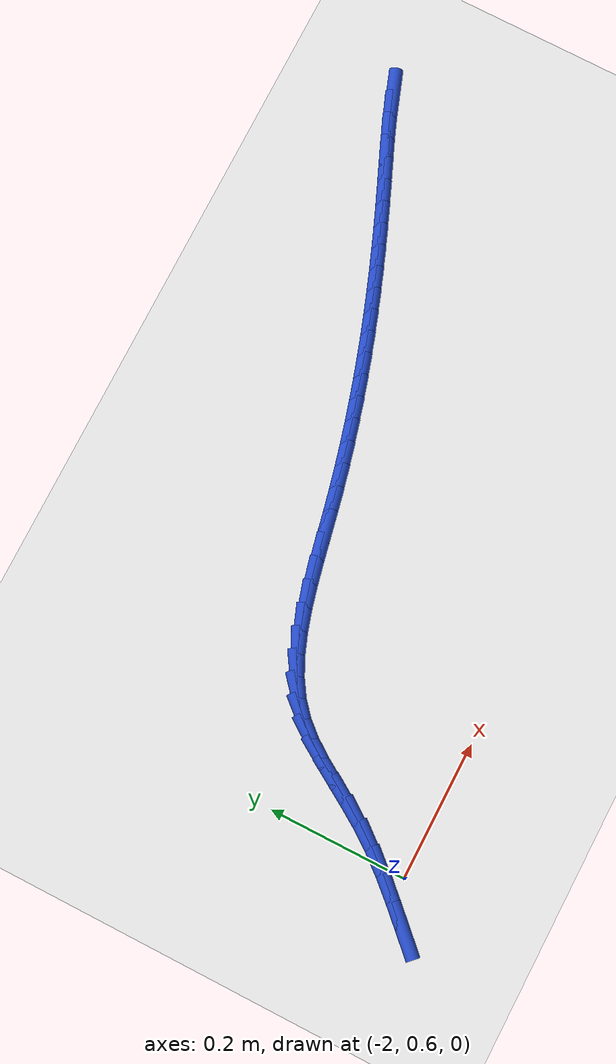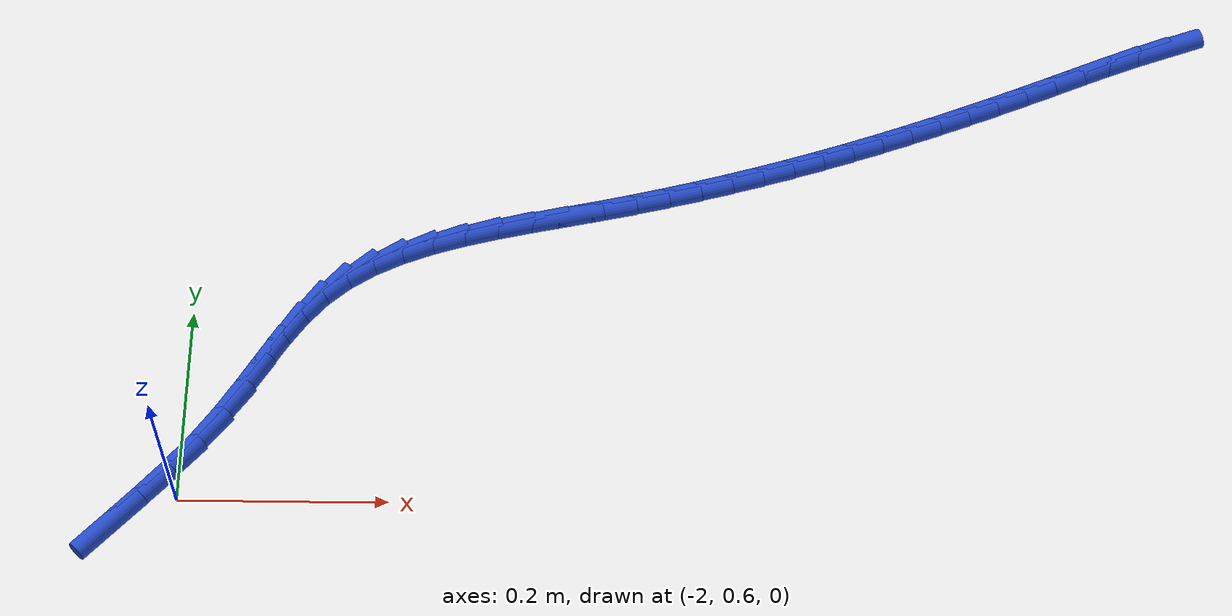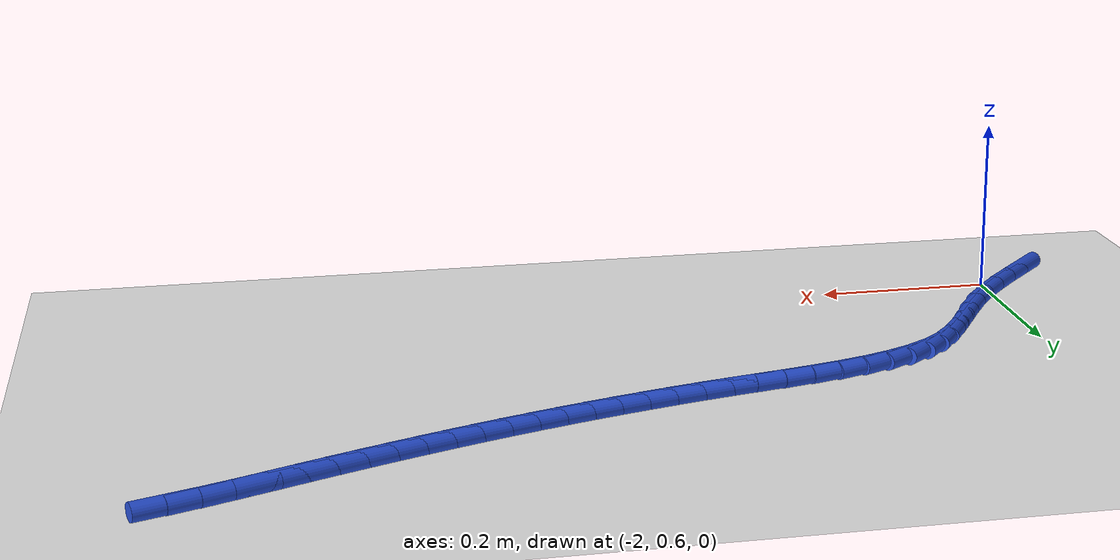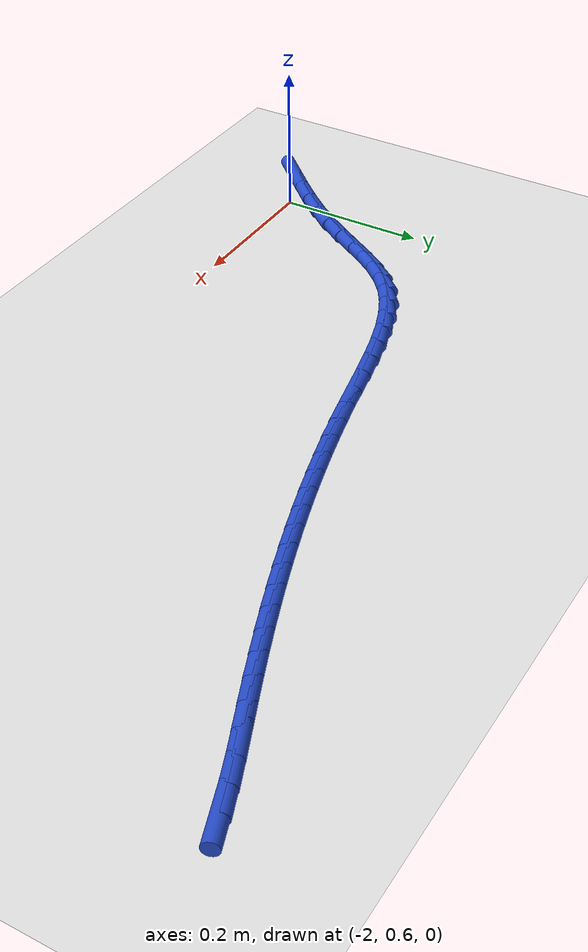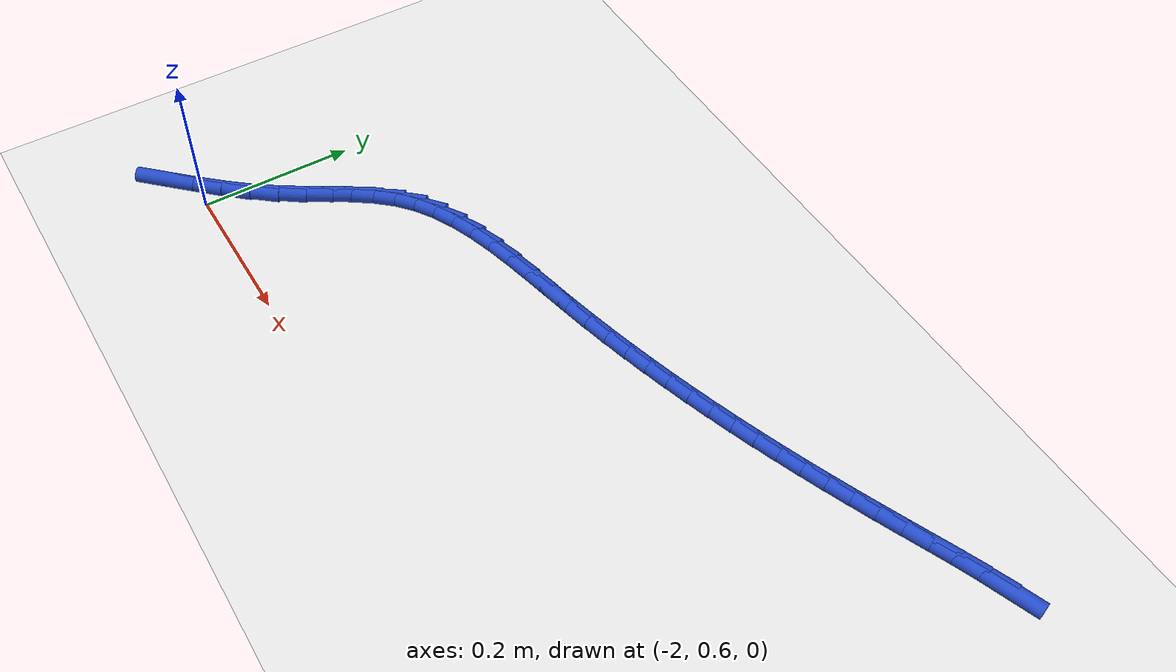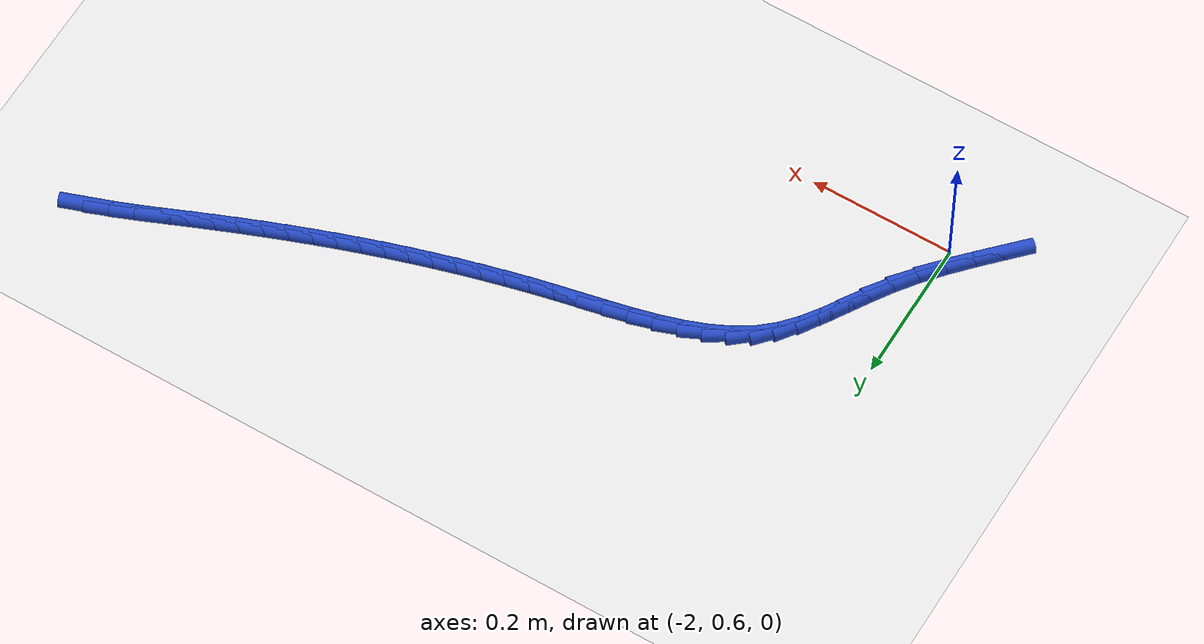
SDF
<sdf version="1.6">
 <world name="default">
  <model name="ground_plane">
   <static>1</static>
   <link name="link">
    <collision name="collision">
     <geometry><plane><normal>0 0 1</normal><size>100 100</size></plane></geometry>
     <surface><friction><ode><mu>100</mu><mu2>50</mu2></ode></friction></surface>
    </collision>
    <visual name="visual">
     <cast_shadows>0</cast_shadows>
     <geometry><plane><normal>0 0 1</normal><size>100 100</size></plane></geometry>
     <material>
      <script><uri>file://media/materials/scripts/gazebo.material</uri><name>Gazebo/WhiteGlow</name></script>
     </material>
    </visual>
   </link>
  </model>
  <model name="line">
   <link name="link_55">
    <pose>-1.035211006623647 1.110637410964738 0.01 0 1.57 0.34674294993567206</pose>
    <collision name="collision">
     <geometry><cylinder><radius>0.01</radius><length>0.08</length></cylinder></geometry>
    </collision>
    <visual name="visual">
     <material>
      <script><name>Gazebo/Blue</name><uri>file://media/materials/scripts/gazebo.material</uri></script>
     </material>
     <geometry><cylinder><radius>0.01</radius><length>0.08</length></cylinder></geometry>
    </visual>
   </link>
   <link name="link_56">
    <pose>-1.065957953438669 1.0995272530395916 0.01 0 1.57 0.3785365288893354</pose>
    <collision name="collision">
     <geometry><cylinder><radius>0.01</radius><length>0.08</length></cylinder></geometry>
    </collision>
    <visual name="visual">
     <material>
      <script><name>Gazebo/Blue</name><uri>file://media/materials/scripts/gazebo.material</uri></script>
     </material>
     <geometry><cylinder><radius>0.01</radius><length>0.08</length></cylinder></geometry>
    </visual>
   </link>
   <link name="link_57">
    <pose>-1.0966166528225265 1.0873337740822344 0.01 0 1.57 0.397098282216129</pose>
    <collision name="collision">
     <geometry><cylinder><radius>0.01</radius><length>0.08</length></cylinder></geometry>
    </collision>
    <visual name="visual">
     <material>
      <script><name>Gazebo/Blue</name><uri>file://media/materials/scripts/gazebo.material</uri></script>
     </material>
     <geometry><cylinder><radius>0.01</radius><length>0.08</length></cylinder></geometry>
    </visual>
   </link>
   <link name="link_58">
    <pose>-1.1271143726811463 1.0745437321711864 0.01 0 1.57 0.4029237108310625</pose>
    <collision name="collision">
     <geometry><cylinder><radius>0.01</radius><length>0.08</length></cylinder></geometry>
    </collision>
    <visual name="visual">
     <material>
      <script><name>Gazebo/Blue</name><uri>file://media/materials/scripts/gazebo.material</uri></script>
     </material>
     <geometry><cylinder><radius>0.01</radius><length>0.08</length></cylinder></geometry>
    </visual>
   </link>
   <link name="link_59">
    <pose>-1.1573783809204568 1.061643885384967 0.01 0 1.57 0.39751565663080074</pose>
    <collision name="collision">
     <geometry><cylinder><radius>0.01</radius><length>0.08</length></cylinder></geometry>
    </collision>
    <visual name="visual">
     <material>
      <script><name>Gazebo/Blue</name><uri>file://media/materials/scripts/gazebo.material</uri></script>
     </material>
     <geometry><cylinder><radius>0.01</radius><length>0.08</length></cylinder></geometry>
    </visual>
   </link>
   <link name="link_60">
    <pose>-1.187353237792166 1.0490584065122837 0.01 0 1.57 0.38870804504021667</pose>
    <collision name="collision">
     <geometry><cylinder><radius>0.01</radius><length>0.08</length></cylinder></geometry>
    </collision>
    <visual name="visual">
     <material>
      <script><name>Gazebo/Blue</name><uri>file://media/materials/scripts/gazebo.material</uri></script>
     </material>
     <geometry><cylinder><radius>0.01</radius><length>0.08</length></cylinder></geometry>
    </visual>
   </link>
   <link name="link_61">
    <pose>-1.2170732323509796 1.0368867175410643 0.01 0 1.57 0.37910753694340543</pose>
    <collision name="collision">
     <geometry><cylinder><radius>0.01</radius><length>0.08</length></cylinder></geometry>
    </collision>
    <visual name="visual">
     <material>
      <script><name>Gazebo/Blue</name><uri>file://media/materials/scripts/gazebo.material</uri></script>
     </material>
     <geometry><cylinder><radius>0.01</radius><length>0.08</length></cylinder></geometry>
    </visual>
   </link>
   <link name="link_62">
    <pose>-1.2466016678025291 1.0251232310482887 0.01 0 1.57 0.36874794204758904</pose>
    <collision name="collision">
     <geometry><cylinder><radius>0.01</radius><length>0.08</length></cylinder></geometry>
    </collision>
    <visual name="visual">
     <material>
      <script><name>Gazebo/Blue</name><uri>file://media/materials/scripts/gazebo.material</uri></script>
     </material>
     <geometry><cylinder><radius>0.01</radius><length>0.08</length></cylinder></geometry>
    </visual>
   </link>
   <link name="link_63">
    <pose>-1.27600186196344 1.0137623067301282 0.01 0 1.57 0.35767268551169923</pose>
    <collision name="collision">
     <geometry><cylinder><radius>0.01</radius><length>0.08</length></cylinder></geometry>
    </collision>
    <visual name="visual">
     <material>
      <script><name>Gazebo/Blue</name><uri>file://media/materials/scripts/gazebo.material</uri></script>
     </material>
     <geometry><cylinder><radius>0.01</radius><length>0.08</length></cylinder></geometry>
    </visual>
   </link>
   <link name="link_64">
    <pose>-1.3053371326503358 1.0027983042827555 0.01 0 1.57 0.34593583188813853</pose>
    <collision name="collision">
     <geometry><cylinder><radius>0.01</radius><length>0.08</length></cylinder></geometry>
    </collision>
    <visual name="visual">
     <material>
      <script><name>Gazebo/Blue</name><uri>file://media/materials/scripts/gazebo.material</uri></script>
     </material>
     <geometry><cylinder><radius>0.01</radius><length>0.08</length></cylinder></geometry>
    </visual>
   </link>
   <link name="link_65">
    <pose>-1.3346707976798418 0.9922255834023425 0.01 0 1.57 0.3336014136862844</pose>
    <collision name="collision">
     <geometry><cylinder><radius>0.01</radius><length>0.08</length></cylinder></geometry>
    </collision>
    <visual name="visual">
     <material>
      <script><name>Gazebo/Blue</name><uri>file://media/materials/scripts/gazebo.material</uri></script>
     </material>
     <geometry><cylinder><radius>0.01</radius><length>0.08</length></cylinder></geometry>
    </visual>
   </link>
   <link name="link_66">
    <pose>-1.3640661748685832 0.9820385037850615 0.01 0 1.57 0.3207423926522801</pose>
    <collision name="collision">
     <geometry><cylinder><radius>0.01</radius><length>0.08</length></cylinder></geometry>
    </collision>
    <visual name="visual">
     <material>
      <script><name>Gazebo/Blue</name><uri>file://media/materials/scripts/gazebo.material</uri></script>
     </material>
     <geometry><cylinder><radius>0.01</radius><length>0.08</length></cylinder></geometry>
    </visual>
   </link>
   <link name="link_67">
    <pose>-1.393586582033184 0.9722314251270845 0.01 0 1.57 0.30743928002870974</pose>
    <collision name="collision">
     <geometry><cylinder><radius>0.01</radius><length>0.08</length></cylinder></geometry>
    </collision>
    <visual name="visual">
     <material>
      <script><name>Gazebo/Blue</name><uri>file://media/materials/scripts/gazebo.material</uri></script>
     </material>
     <geometry><cylinder><radius>0.01</radius><length>0.08</length></cylinder></geometry>
    </visual>
   </link>
   <link name="link_68">
    <pose>-1.4232953369902692 0.9627987071245837 0.01 0 1.57 0.29377846605774915</pose>
    <collision name="collision">
     <geometry><cylinder><radius>0.01</radius><length>0.08</length></cylinder></geometry>
    </collision>
    <visual name="visual">
     <material>
      <script><name>Gazebo/Blue</name><uri>file://media/materials/scripts/gazebo.material</uri></script>
     </material>
     <geometry><cylinder><radius>0.01</radius><length>0.08</length></cylinder></geometry>
    </visual>
   </link>
   <link name="link_69">
    <pose>-1.4532557575564637 0.9537347094737318 0.01 0 1.57 0.27985033041606083</pose>
    <collision name="collision">
     <geometry><cylinder><radius>0.01</radius><length>0.08</length></cylinder></geometry>
    </collision>
    <visual name="visual">
     <material>
      <script><name>Gazebo/Blue</name><uri>file://media/materials/scripts/gazebo.material</uri></script>
     </material>
     <geometry><cylinder><radius>0.01</radius><length>0.08</length></cylinder></geometry>
    </visual>
   </link>
   <link name="link_70">
    <pose>-1.483531161548392 0.9450337918707004 0.01 0 1.57 0.26574722159702757</pose>
    <collision name="collision">
     <geometry><cylinder><radius>0.01</radius><length>0.08</length></cylinder></geometry>
    </collision>
    <visual name="visual">
     <material>
      <script><name>Gazebo/Blue</name><uri>file://media/materials/scripts/gazebo.material</uri></script>
     </material>
     <geometry><cylinder><radius>0.01</radius><length>0.08</length></cylinder></geometry>
    </visual>
   </link>
   <link name="link_71">
    <pose>-1.514184866782678 0.9366903140116618 0.01 0 1.57 0.2515614024798977</pose>
    <collision name="collision">
     <geometry><cylinder><radius>0.01</radius><length>0.08</length></cylinder></geometry>
    </collision>
    <visual name="visual">
     <material>
      <script><name>Gazebo/Blue</name><uri>file://media/materials/scripts/gazebo.material</uri></script>
     </material>
     <geometry><cylinder><radius>0.01</radius><length>0.08</length></cylinder></geometry>
    </visual>
   </link>
   <link name="link_72">
    <pose>-1.5452801910759477 0.9286986355927882 0.01 0 1.57 0.23738306031666873</pose>
    <collision name="collision">
     <geometry><cylinder><radius>0.01</radius><length>0.08</length></cylinder></geometry>
    </collision>
    <visual name="visual">
     <material>
      <script><name>Gazebo/Blue</name><uri>file://media/materials/scripts/gazebo.material</uri></script>
     </material>
     <geometry><cylinder><radius>0.01</radius><length>0.08</length></cylinder></geometry>
    </visual>
   </link>
   <link name="link_73">
    <pose>-1.5768804522448245 0.9210531163102518 0.01 0 1.57 0.22329847208813447</pose>
    <collision name="collision">
     <geometry><cylinder><radius>0.01</radius><length>0.08</length></cylinder></geometry>
    </collision>
    <visual name="visual">
     <material>
      <script><name>Gazebo/Blue</name><uri>file://media/materials/scripts/gazebo.material</uri></script>
     </material>
     <geometry><cylinder><radius>0.01</radius><length>0.08</length></cylinder></geometry>
    </visual>
   </link>
   <link name="link_74">
    <pose>-1.6090489681059348 0.9137481158602249 0.01 0 1.57 0.21053870921814336</pose>
    <collision name="collision">
     <geometry><cylinder><radius>0.01</radius><length>0.08</length></cylinder></geometry>
    </collision>
    <visual name="visual">
     <material>
      <script><name>Gazebo/Blue</name><uri>file://media/materials/scripts/gazebo.material</uri></script>
     </material>
     <geometry><cylinder><radius>0.01</radius><length>0.08</length></cylinder></geometry>
    </visual>
   </link>
   <link name="link_75">
    <pose>-1.641809948272826 0.9067469079319925 0.01 0 1.57 0.20856906568955896</pose>
    <collision name="collision">
     <geometry><cylinder><radius>0.01</radius><length>0.08</length></cylinder></geometry>
    </collision>
    <visual name="visual">
     <material>
      <script><name>Gazebo/Blue</name><uri>file://media/materials/scripts/gazebo.material</uri></script>
     </material>
     <geometry><cylinder><radius>0.01</radius><length>0.08</length></cylinder></geometry>
    </visual>
   </link>
   <link name="link_76">
    <pose>-1.6748596032549172 0.8997520489839753 0.01 0 1.57 0.22189958610601032</pose>
    <collision name="collision">
     <geometry><cylinder><radius>0.01</radius><length>0.08</length></cylinder></geometry>
    </collision>
    <visual name="visual">
     <material>
      <script><name>Gazebo/Blue</name><uri>file://media/materials/scripts/gazebo.material</uri></script>
     </material>
     <geometry><cylinder><radius>0.01</radius><length>0.08</length></cylinder></geometry>
    </visual>
   </link>
   <link name="link_77">
    <pose>-1.7077303694699226 0.89233591607124 0.01 0 1.57 0.2511091255094532</pose>
    <collision name="collision">
     <geometry><cylinder><radius>0.01</radius><length>0.08</length></cylinder></geometry>
    </collision>
    <visual name="visual">
     <material>
      <script><name>Gazebo/Blue</name><uri>file://media/materials/scripts/gazebo.material</uri></script>
     </material>
     <geometry><cylinder><radius>0.01</radius><length>0.08</length></cylinder></geometry>
    </visual>
   </link>
   <link name="link_78">
    <pose>-1.7399534751488828 0.8840699258953636 0.01 0 1.57 0.2977101338967862</pose>
    <collision name="collision">
     <geometry><cylinder><radius>0.01</radius><length>0.08</length></cylinder></geometry>
    </collision>
    <visual name="visual">
     <material>
      <script><name>Gazebo/Blue</name><uri>file://media/materials/scripts/gazebo.material</uri></script>
     </material>
     <geometry><cylinder><radius>0.01</radius><length>0.08</length></cylinder></geometry>
    </visual>
   </link>
   <link name="link_79">
    <pose>-1.7710601485228386 0.8745254951579248 0.01 0 1.57 0.3641321929782609</pose>
    <collision name="collision">
     <geometry><cylinder><radius>0.01</radius><length>0.08</length></cylinder></geometry>
    </collision>
    <visual name="visual">
     <material>
      <script><name>Gazebo/Blue</name><uri>file://media/materials/scripts/gazebo.material</uri></script>
     </material>
     <geometry><cylinder><radius>0.01</radius><length>0.08</length></cylinder></geometry>
    </visual>
   </link>
   <link name="link_80">
    <pose>-1.8005816178228293 0.8632740405605003 0.01 0 1.57 0.45349940419347</pose>
    <collision name="collision">
     <geometry><cylinder><radius>0.01</radius><length>0.08</length></cylinder></geometry>
    </collision>
    <visual name="visual">
     <material>
      <script><name>Gazebo/Blue</name><uri>file://media/materials/scripts/gazebo.material</uri></script>
     </material>
     <geometry><cylinder><radius>0.01</radius><length>0.08</length></cylinder></geometry>
    </visual>
   </link>
   <link name="link_81">
    <pose>-1.8280491112798962 0.8498869788046682 0.01 0 1.57 0.5689324293098598</pose>
    <collision name="collision">
     <geometry><cylinder><radius>0.01</radius><length>0.08</length></cylinder></geometry>
    </collision>
    <visual name="visual">
     <material>
      <script><name>Gazebo/Blue</name><uri>file://media/materials/scripts/gazebo.material</uri></script>
     </material>
     <geometry><cylinder><radius>0.01</radius><length>0.08</length></cylinder></geometry>
    </visual>
   </link>
   <link name="link_82">
    <pose>-1.8529938571250792 0.8339357265920062 0.01 0 1.57 0.7113858931317286</pose>
    <collision name="collision">
     <geometry><cylinder><radius>0.01</radius><length>0.08</length></cylinder></geometry>
    </collision>
    <visual name="visual">
     <material>
      <script><name>Gazebo/Blue</name><uri>file://media/materials/scripts/gazebo.material</uri></script>
     </material>
     <geometry><cylinder><radius>0.01</radius><length>0.08</length></cylinder></geometry>
    </visual>
   </link>
   <link name="link_83">
    <pose>-1.8749615645549955 0.815000851913767 0.01 0 1.57 0.8530766241379482</pose>
    <collision name="collision">
     <geometry><cylinder><radius>0.01</radius><length>0.08</length></cylinder></geometry>
    </collision>
    <visual name="visual">
     <material>
      <script><name>Gazebo/Blue</name><uri>file://media/materials/scripts/gazebo.material</uri></script>
     </material>
     <geometry><cylinder><radius>0.01</radius><length>0.08</length></cylinder></geometry>
    </visual>
   </link>
   <link name="link_84">
    <pose>-1.8941201948216653 0.7930561568159482 0.01 0 1.57 0.9532680805379136</pose>
    <collision name="collision">
     <geometry><cylinder><radius>0.01</radius><length>0.08</length></cylinder></geometry>
    </collision>
    <visual name="visual">
     <material>
      <script><name>Gazebo/Blue</name><uri>file://media/materials/scripts/gazebo.material</uri></script>
     </material>
     <geometry><cylinder><radius>0.01</radius><length>0.08</length></cylinder></geometry>
    </visual>
   </link>
   <link name="link_85">
    <pose>-1.9114821234579145 0.7686090734846789 0.01 0 1.57 1.0085199238329816</pose>
    <collision name="collision">
     <geometry><cylinder><radius>0.01</radius><length>0.08</length></cylinder></geometry>
    </collision>
    <visual name="visual">
     <material>
      <script><name>Gazebo/Blue</name><uri>file://media/materials/scripts/gazebo.material</uri></script>
     </material>
     <geometry><cylinder><radius>0.01</radius><length>0.08</length></cylinder></geometry>
    </visual>
   </link>
   <link name="link_86">
    <pose>-1.9281199417086479 0.7422050876061398 0.01 0 1.57 1.022561161154367</pose>
    <collision name="collision">
     <geometry><cylinder><radius>0.01</radius><length>0.08</length></cylinder></geometry>
    </collision>
    <visual name="visual">
     <material>
      <script><name>Gazebo/Blue</name><uri>file://media/materials/scripts/gazebo.material</uri></script>
     </material>
     <geometry><cylinder><radius>0.01</radius><length>0.08</length></cylinder></geometry>
    </visual>
   </link>
   <link name="link_87">
    <pose>-1.9451062408187727 0.71438968486651 0.01 0 1.57 1.0002148489982008</pose>
    <collision name="collision">
     <geometry><cylinder><radius>0.01</radius><length>0.08</length></cylinder></geometry>
    </collision>
    <visual name="visual">
     <material>
      <script><name>Gazebo/Blue</name><uri>file://media/materials/scripts/gazebo.material</uri></script>
     </material>
     <geometry><cylinder><radius>0.01</radius><length>0.08</length></cylinder></geometry>
    </visual>
   </link>
   <link name="link_88">
    <pose>-1.9635136120331953 0.6857083509519698 0.01 0 1.57 0.9463994640038195</pose>
    <collision name="collision">
     <geometry><cylinder><radius>0.01</radius><length>0.08</length></cylinder></geometry>
    </collision>
    <visual name="visual">
     <material>
      <script><name>Gazebo/Blue</name><uri>file://media/materials/scripts/gazebo.material</uri></script>
     </material>
     <geometry><cylinder><radius>0.01</radius><length>0.08</length></cylinder></geometry>
    </visual>
   </link>
   <link name="link_89">
    <pose>-1.984411796040749 0.6567059648007467 0.01 0 1.57 0.8809808052391757</pose>
    <collision name="collision">
     <geometry><cylinder><radius>0.01</radius><length>0.08</length></cylinder></geometry>
    </collision>
    <visual name="visual">
     <material>
      <script><name>Gazebo/Blue</name><uri>file://media/materials/scripts/gazebo.material</uri></script>
     </material>
     <geometry><cylinder><radius>0.01</radius><length>0.08</length></cylinder></geometry>
    </visual>
   </link>
   <link name="link_90">
    <pose>-2.0082617618379035 0.6277978267817645 0.01 0 1.57 0.8363865069743509</pose>
    <collision name="collision">
     <geometry><cylinder><radius>0.01</radius><length>0.08</length></cylinder></geometry>
    </collision>
    <visual name="visual">
     <material>
      <script><name>Gazebo/Blue</name><uri>file://media/materials/scripts/gazebo.material</uri></script>
     </material>
     <geometry><cylinder><radius>0.01</radius><length>0.08</length></cylinder></geometry>
    </visual>
   </link>
   <link name="link_91">
    <pose>-2.0341640346099905 0.5991096634140499 0.01 0 1.57 0.8127390895773906</pose>
    <collision name="collision">
     <geometry><cylinder><radius>0.01</radius><length>0.08</length></cylinder></geometry>
    </collision>
    <visual name="visual">
     <material>
      <script><name>Gazebo/Blue</name><uri>file://media/materials/scripts/gazebo.material</uri></script>
     </material>
     <geometry><cylinder><radius>0.01</radius><length>0.08</length></cylinder></geometry>
    </visual>
   </link>
   <link name="link_92">
    <pose>-2.061034722105138 0.5707279475063031 0.01 0 1.57 0.8079280628966276</pose>
    <collision name="collision">
     <geometry><cylinder><radius>0.01</radius><length>0.08</length></cylinder></geometry>
    </collision>
    <visual name="visual">
     <material>
      <script><name>Gazebo/Blue</name><uri>file://media/materials/scripts/gazebo.material</uri></script>
     </material>
     <geometry><cylinder><radius>0.01</radius><length>0.08</length></cylinder></geometry>
    </visual>
   </link>
  </model>
 </world>
</sdf>
